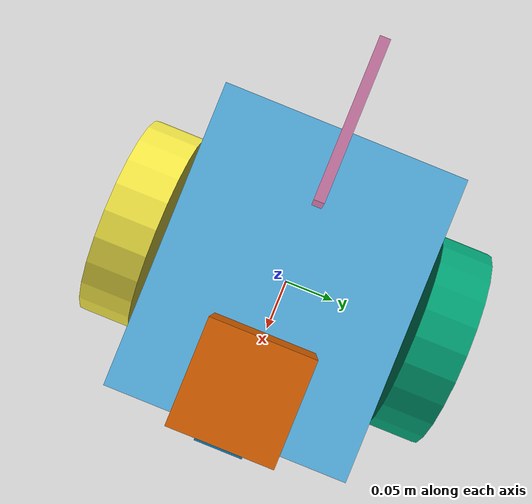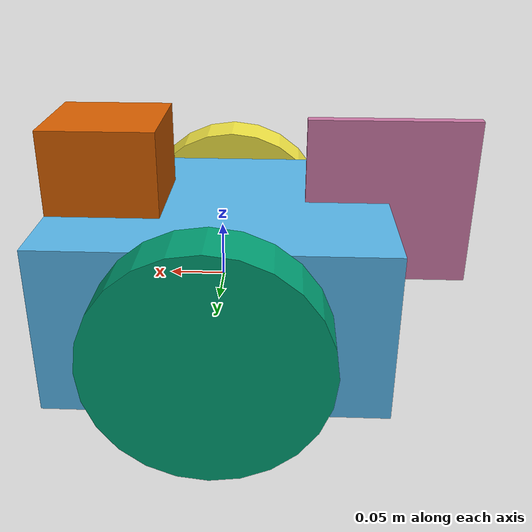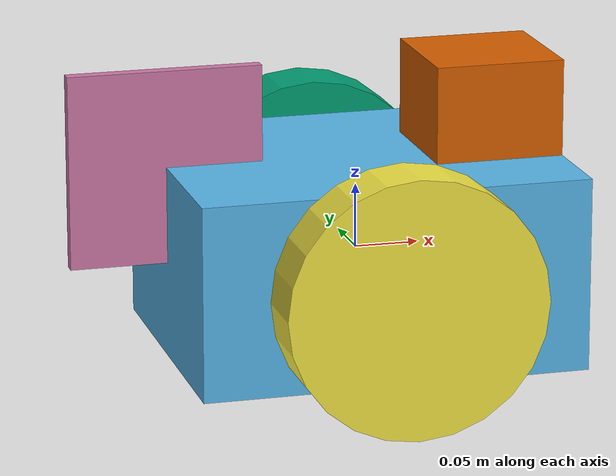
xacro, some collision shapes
<?xml version='1.0'?>

<robot name="udacity_bot" xmlns:xacro="http://www.ros.org/wiki/xacro">

  <xacro:include filename="$(find udacity_bot)/urdf/udacity_bot.gazebo" />

  <link name="robot_footprint"></link>

  <joint name="robot_footprint_joint" type="fixed">
    <origin xyz="0 0 0" rpy="0 0 0" />
    <parent link="robot_footprint"/>
    <child link="chassis" />
  </joint>

  <link name='chassis'>
    <pose>0 0 0.1 0 0 0</pose>

    <inertial>
      <mass value="15.0"/>
      <origin xyz="0.0 0 0" rpy=" 0 0 0"/>
      <inertia
          ixx="0.1" ixy="0" ixz="0"
          iyy="0.1" iyz="0"
          izz="0.1"
      />
    </inertial>

    <collision name='collision'>
      <origin xyz="0 0 0" rpy=" 0 0 0"/>
      <geometry>
        <box size=".3 .24 .15"/>
      </geometry>
    </collision>

    <visual name='chassis_visual'>
      <origin xyz="0 0 0" rpy=" 0 0 0"/>
      <geometry>
        <box size=".3 .24 .15"/>
      </geometry>
    </visual>

    <collision name='back_caster_collision'>
      <origin xyz="-0.10 0 -0.05" rpy=" 0 0 0"/>
      <geometry>
        <sphere radius="0.0499"/>
      </geometry>
    </collision>

    <visual name='back_caster_visual'>
      <origin xyz="-0.10 0 -0.05" rpy=" 0 0 0"/>
      <geometry>
        <sphere radius="0.05"/>
      </geometry>
    </visual>

    <collision name='front_caster_collision'>
      <origin xyz="0.10 0 -0.05" rpy=" 0 0 0"/>
      <geometry>
        <sphere radius="0.0499"/>
      </geometry>
    </collision>

    <visual name='front_caster_visual'>
      <origin xyz="0.10 0 -0.05" rpy=" 0 0 0"/>
      <geometry>
        <sphere radius="0.05"/>
      </geometry>
    </visual>

  </link>

  <joint type="continuous" name="left_wheel_hinge">
    <origin xyz="0 0.15 0" rpy="0 0 0"/>
    <child link="left_wheel"/>
    <parent link="chassis"/>
    <axis xyz="0 1 0" rpy="0 0 0"/>
    <limit effort="10000" velocity="1000"/>
    <dynamics damping="1.0" friction="1.0"/>
  </joint>

  <link name='left_wheel'>
    <pose>0 0 0.1 0 0 0</pose>

    <inertial>
      <mass value="5"/>
      <origin xyz="0.0 0 0" rpy=" 0 0 0"/>
      <inertia
          ixx="0.1" ixy="0" ixz="0"
          iyy="0.1" iyz="0"
          izz="0.1"
      />
    </inertial>

    <collision name='left_wheel_collision'>
      <origin xyz="0 0 0" rpy=" 0 1.5707 1.5707"/>
      <geometry>
        <cylinder length="0.05" radius="0.1"/>
      </geometry>
    </collision>

    <visual name='left_wheel_visual'>
      <origin xyz="0 0 0" rpy=" 0 1.5707 1.5707"/>
      <geometry>
        <cylinder length="0.05" radius="0.1"/>
      </geometry>
    </visual>

  </link>

  <joint type="continuous" name="right_wheel_hinge">
    <origin xyz="0 -0.15 0" rpy="0 0 0"/>
    <child link="right_wheel"/>
    <parent link="chassis"/>
    <axis xyz="0 1 0" rpy="0 0 0"/>
    <limit effort="10000" velocity="1000"/>
    <dynamics damping="1.0" friction="1.0"/>
  </joint>

  <link name='right_wheel'>
    <pose>0 0 0.1 0 0 0</pose>

    <inertial>
      <mass value="5"/>
      <origin xyz="0.0 0 0" rpy=" 0 0 0"/>
      <inertia
          ixx="0.1" ixy="0" ixz="0"
          iyy="0.1" iyz="0"
          izz="0.1"
      />
    </inertial>

    <collision name='right_wheel_collision'>
      <origin xyz="0 0 0" rpy=" 0 1.5707 1.5707"/>
      <geometry>
        <cylinder length="0.05" radius="0.1"/>
      </geometry>
    </collision>

    <visual name='right_wheel_visual'>
      <origin xyz="0 0 0" rpy=" 0 1.5707 1.5707"/>
      <geometry>
        <cylinder length="0.05" radius="0.1"/>
      </geometry>
    </visual>

  </link>

  <joint type="fixed" name="camera_joint">
    <origin xyz="0.15 0 0" rpy="0 0 0"/>
    <child link="camera"/>
    <parent link="chassis"/>
    <axis xyz="0 1 0" rpy="0 0 0"/>
    <limit effort="10000" velocity="1000"/>
    <dynamics damping="1.0" friction="1.0"/>
  </joint>

  <link name='camera'>
    <pose>0 0 0.1 0 0 0</pose>

    <inertial>
      <mass value="0.1"/>
      <origin xyz="0.0 0 0" rpy=" 0 0 0"/>
      <inertia
          ixx="1e-6" ixy="0" ixz="0"
          iyy="1e-6" iyz="0"
          izz="1e-6"
      />
    </inertial>

    <collision name='camera_collision'>
      <origin xyz="0 0 0" rpy=" 0 0 0"/>
      <geometry>
        <box size="0.05 0.05 0.05"/>
      </geometry>
    </collision>

    <visual name='camera_visual'>
      <origin xyz="0 0 0" rpy=" 0 0 0"/>
      <geometry>
        <box size="0.05 0.05 0.05"/>
      </geometry>
    </visual>

  </link>

  <joint type="fixed" name="hokuyo_joint">
    <origin xyz="0.1 0 0.1" rpy="0 0 0"/>
    <child link="hokuyo"/>
    <parent link="chassis"/>
    <axis xyz="0 1 0" rpy="0 0 0"/>
    <limit effort="10000" velocity="1000"/>
    <dynamics damping="1.0" friction="1.0"/>
  </joint>

  <link name='hokuyo'>
    <pose>0 0 0.1 0 0 0</pose>

    <inertial>
      <mass value="0.1"/>
      <origin xyz="0 0 0" rpy=" 0 0 0"/>
      <inertia
          ixx="1e-6" ixy="0" ixz="0"
          iyy="1e-6" iyz="0"
          izz="1e-6"
      />
    </inertial>

    <collision name='hokuyo_collision'>
      <origin xyz="0 0 0" rpy=" 0 0 0"/>
      <geometry>
        <box size="0.1 0.1 0.1"/>
      </geometry>
    </collision>

    <visual name='hokuyo_visual'>
      <origin xyz="0 0 0" rpy=" 0 0 0"/>
      <geometry>
        <mesh filename="package://udacity_bot/meshes/hokuyo.dae"/>
      </geometry>
    </visual>

  </link>

  <joint type="fixed" name="fin_joint">
    <origin xyz="-0.15 0 0.075" rpy="0 0 0"/>
    <child link="fin"/>
    <parent link="chassis"/>
    <axis xyz="0 1 0" rpy="0 0 0"/>
    <limit effort="10000" velocity="1000"/>
    <dynamics damping="1.0" friction="1.0"/>
  </joint>

  <link name='fin'>
    <pose>0 0 0.1 0 0 0</pose>

    <inertial>
      <mass value="0.1"/>
      <origin xyz="0.0 0 0" rpy=" 0 0 0"/>
      <inertia
          ixx="1e-6" ixy="0" ixz="0"
          iyy="1e-6" iyz="0"
          izz="1e-6"
      />
    </inertial>

    <collision name='fin_collision'>
      <origin xyz="0 0 0" rpy=" 0 0 0"/>
      <geometry>
        <box size="0.15 0.01 0.15"/>
      </geometry>
    </collision>

    <visual name='fin_visual'>
      <origin xyz="0 0 0" rpy=" 0 0 0"/>
      <geometry>
        <box size="0.15 0.01 0.15"/>
      </geometry>
    </visual>

  </link>

</robot>
